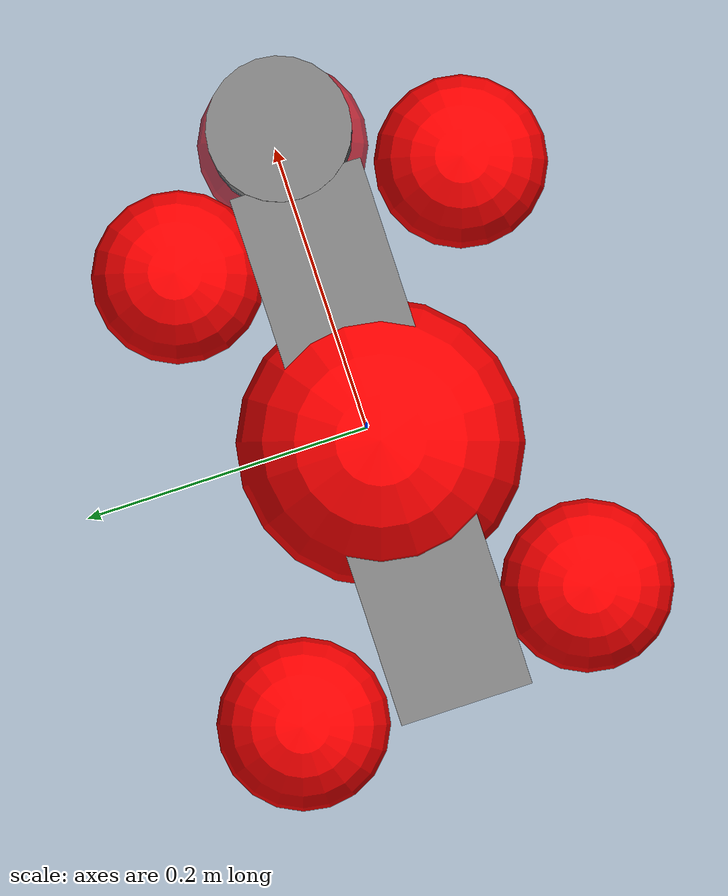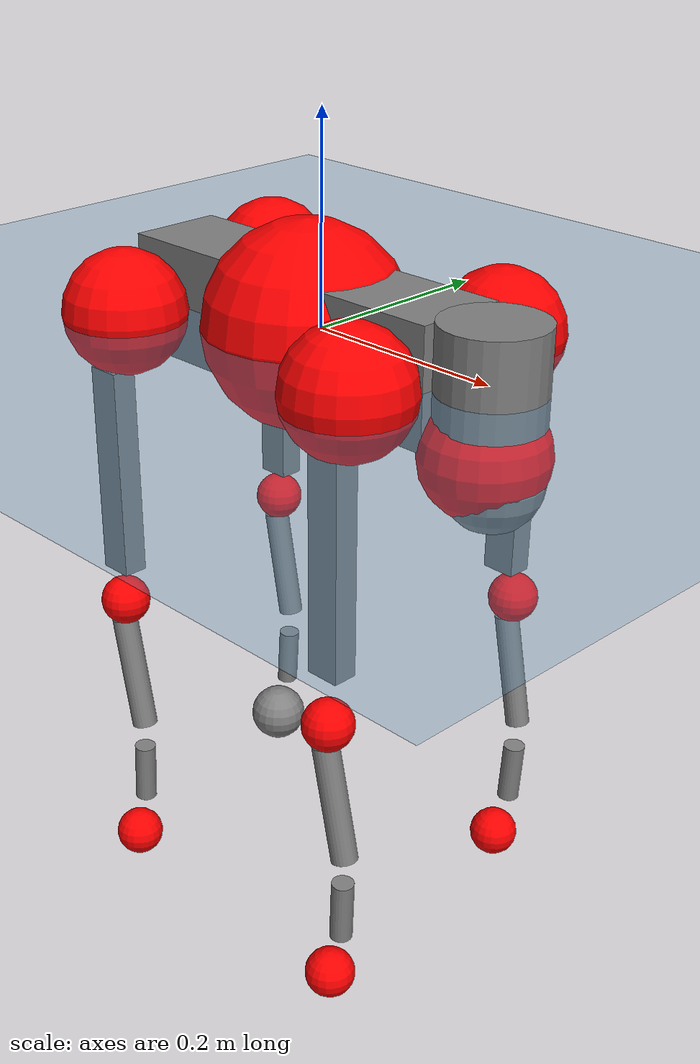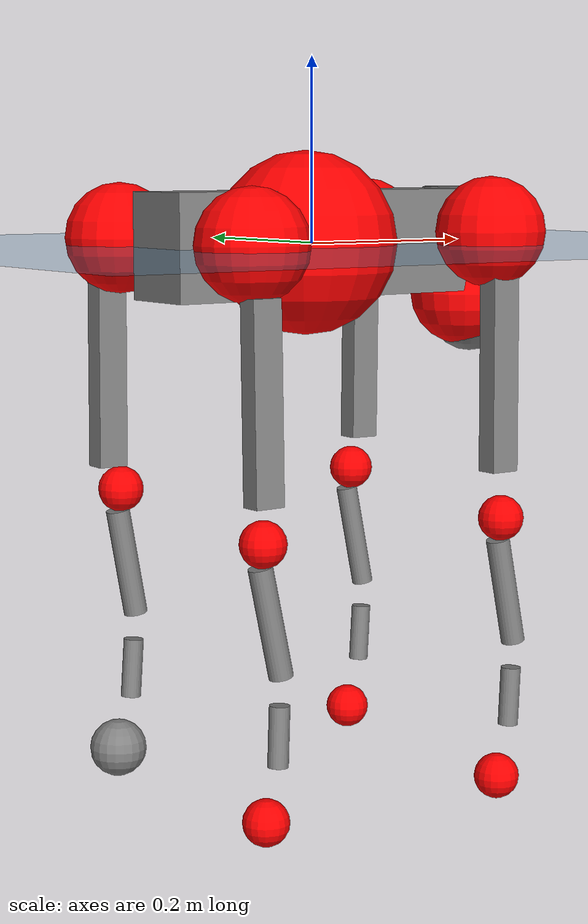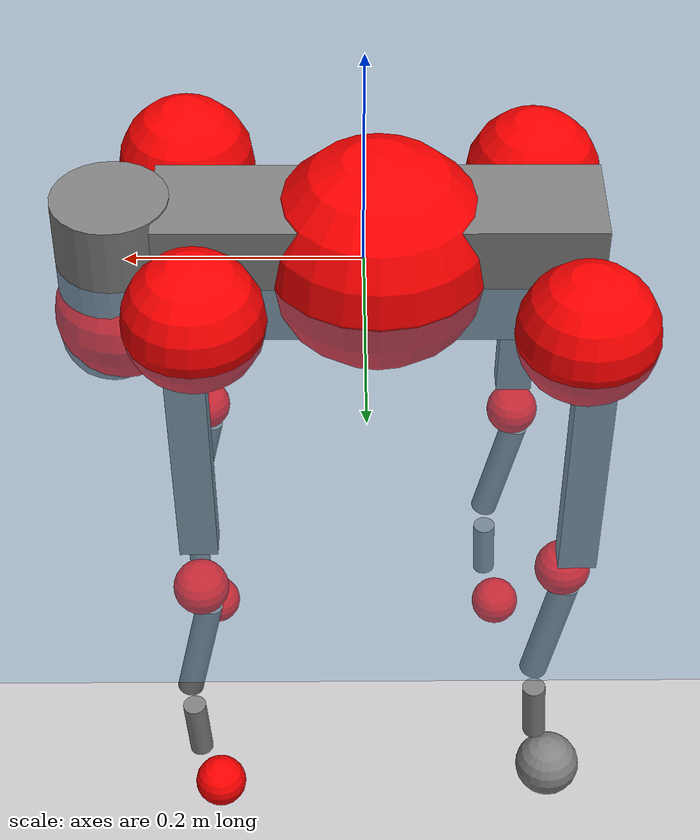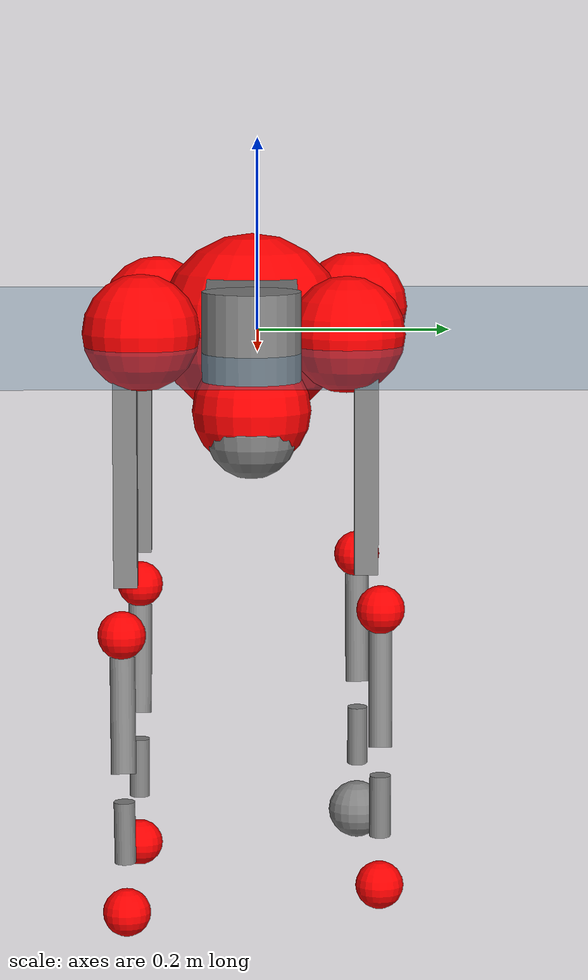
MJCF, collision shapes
<mujoco model="go2">
  <compiler angle="radian" assetdir="assets" balanceinertia="true" inertiafromgeom="false"/>

  <option timestep="0.005" density="1.2" viscosity="2e-05"/>

  <size nkey="1"/>

  <visual>
    <quality shadowsize="8192"/>
    <map shadowclip="0.5"/>
  </visual>

  <default>
    <default class="/">
      <geom contype="0" conaffinity="0" group="1" solref="-1000 -80"/>
      <site size="0.01 0.005 0.005" group="5"/>
      <general forcelimited="true" biastype="affine" gainprm="20" biasprm="0 -20 -0.5"/>
      <default class="go2">
        <joint armature="0.01" damping="0.01" frictionloss="0.2"/>
        <geom condim="1" margin="0.001"/>
        <default class="visual">
          <geom type="mesh" group="2"/>
        </default>
        <default class="collision">
          <geom group="3"/>
          <default class="foot">
            <geom size="0.022 0 0" condim="6" priority="1" friction="0.8 0.02 0.01" solimp="0.015 1 0.022"/>
          </default>
        </default>
        <default class="reward_collision_sphere">
          <geom group="5" rgba="1 0 0 1"/>
        </default>
      </default>
    </default>
  </default>

  <asset>
    <texture type="skybox" colorspace="auto" name="//unnamed_texture_0" builtin="gradient" rgb1="0.95 0.95 0.95" rgb2="0.95 0.95 0.95" width="100" height="600"/>
    <texture type="2d" colorspace="auto" name="texplane" builtin="checker" rgb1="0.345 0.575 0.748" rgb2="0.345 0.575 0.748" markrgb="1 1 1" width="512" height="512"/>
    <material name="MatPlane" class="/" texture="texplane" texuniform="true" texrepeat="2 2" specular="0.9"/>
    <material name="metal" class="/" rgba="0.9 0.95 0.95 1"/>
    <material name="black" class="/" rgba="0 0 0 1"/>
    <material name="white" class="/"/>
    <material name="gray" class="/" rgba="0.671705 0.692426 0.77427 1"/>
    <mesh name="base_0" class="/" file="base_0.obj"/>
    <mesh name="base_1" class="/" file="base_1.obj"/>
    <mesh name="base_2" class="/" file="base_2.obj"/>
    <mesh name="base_3" class="/" file="base_3.obj"/>
    <mesh name="base_4" class="/" file="base_4.obj"/>
    <mesh name="hip_0" class="/" file="hip_0.obj"/>
    <mesh name="hip_1" class="/" file="hip_1.obj"/>
    <mesh name="thigh_0" class="/" file="thigh_0.obj"/>
    <mesh name="thigh_1" class="/" file="thigh_1.obj"/>
    <mesh name="thigh_mirror_0" class="/" file="thigh_mirror_0.obj"/>
    <mesh name="thigh_mirror_1" class="/" file="thigh_mirror_1.obj"/>
    <mesh name="calf_0" class="/" file="calf_0.obj"/>
    <mesh name="calf_1" class="/" file="calf_1.obj"/>
    <mesh name="calf_mirror_0" class="/" file="calf_mirror_0.obj"/>
    <mesh name="calf_mirror_1" class="/" file="calf_mirror_1.obj"/>
    <mesh name="foot" class="/" file="foot.obj"/>
  </asset>

  <worldbody>
    <geom name="floor" class="/" size="100 100 0.125" type="plane" group="0" material="MatPlane"/>
    <light name="toplight_shadow" class="/" pos="0 0 5" dir="0.0990148 0.0990148 -0.990148" type="directional" ambient="0.04 0.04 0.04" diffuse="0.55 0.55 0.55" specular="0.12 0.12 0.12"/>
    <light name="toplight_fill" class="/" pos="0 0 5" dir="0.0990148 0.0990148 -0.990148" type="directional" castshadow="false" ambient="0.04 0.04 0.04" diffuse="0.3 0.3 0.3" specular="0.08 0.08 0.08"/>
    <body name="trunk" childclass="go2" pos="-0.0125747 -0.00584349 0.00096833" quat="0.999998 -0.000213226 -0.00185854 -0.000236867">
      <inertial pos="0.0173055 0.000974468 -0.00712063" quat="0.0253513 0.705232 0.0242974 0.708106" mass="6.73239" diaginertia="0.0219017 0.0303 0.109492"/>
      <joint name="//unnamed_joint_0" type="free" armature="0" damping="0" frictionloss="0"/>
      <geom name="//unnamed_geom_1" class="visual" material="black" mesh="base_0"/>
      <geom name="//unnamed_geom_2" class="visual" material="black" mesh="base_1"/>
      <geom name="//unnamed_geom_3" class="visual" material="black" mesh="base_2"/>
      <geom name="//unnamed_geom_4" class="visual" material="white" mesh="base_3"/>
      <geom name="//unnamed_geom_5" class="visual" material="gray" mesh="base_4"/>
      <geom name="trunk_1" class="collision" size="0.186296 0.0463016 0.0564533" type="box"/>
      <geom name="trunk_2" class="collision" size="0.0495205 0.0445684" pos="0.221568 0 0.0135892" type="cylinder"/>
      <geom name="trunk_3" class="collision" size="0.0465492" pos="0.227787 0 -0.081535"/>
      <geom name="//unnamed_geom_9" class="reward_collision_sphere" size="0.099041"/>
      <geom name="//unnamed_geom_10" class="reward_collision_sphere" size="0.0594246" pos="0.21768 0 -0.0611512"/>
      <site name="imu" pos="-0.0410649 0.0106739 0.127938" size="0.0099041"/>
      <camera name="track" pos="0 -1.66976 0" quat="0.707107 0.707107 0 0" mode="trackcom"/>
      <camera name="ego_camera" pos="0.242558 0 0.0611512" quat="-0.5 -0.5 0.5 0.5"/>
      <body name="FL_hip" pos="0.149719 0.0377173 0.00822022" quat="0.999983 -0.00127266 0.005356 -0.00196029">
        <inertial pos="0.00931273 0.00767418 -0.000826694" quat="0.494903 0.497268 0.505973 0.501783" mass="0.688337" diaginertia="0.000261958 0.000272654 0.00228222"/>
        <joint name="FL_hip_joint" pos="0 0 0" axis="0.997018 -0.00535719 -0.0769861" stiffness="0.0637997" range="-1.02597 1.04362" armature="0.016424" damping="0" frictionloss="0.127759"/>
        <geom name="//unnamed_geom_11" class="visual" material="metal" mesh="hip_0"/>
        <geom name="//unnamed_geom_12" class="visual" material="gray" mesh="hip_1"/>
        <geom name="//unnamed_geom_13" class="collision" size="0.0455588 0.0198082" pos="0 0.0667906 0" quat="0.707107 0.707107 0 0" type="cylinder"/>
        <geom name="//unnamed_geom_14" class="reward_collision_sphere" size="0.0594246" pos="0 0.0584417 0"/>
        <body name="FL_thigh" pos="0.00902465 0.0776503 0.00772754" quat="0.999995 0.00278677 0.00121796 -0.000997858">
          <inertial pos="-0.00206992 -0.0198447 -0.0298283" quat="0.82594 0.0527765 -0.02783 0.560592" mass="1.18419" diaginertia="0.00179988 0.00252422 0.0043349"/>
          <joint name="FL_thigh_joint" pos="0 0 0" axis="-0.0358407 0.999266 -0.013529" stiffness="0.043714" range="-1.69666 3.49462" armature="0.00366111" damping="0.0443171" frictionloss="0.278864"/>
          <geom name="//unnamed_geom_15" class="visual" material="metal" mesh="thigh_0"/>
          <geom name="//unnamed_geom_16" class="visual" material="gray" mesh="thigh_1"/>
          <geom name="//unnamed_geom_17" class="collision" size="0.105479 0.0121325 0.016837" pos="0 0 -0.144725" quat="0.707107 0 0.707107 0" type="box"/>
          <body name="FL_calf" pos="0.00017932 0.0149775 -0.28903" quat="0.999988 -0.00162998 0.000690877 -0.00461736">
            <inertial pos="-0.00207509 0.00311848 -0.193906" quat="0.698714 0.0573674 0.0299336 0.712468" mass="0.187163" diaginertia="0.000427817 0.000536754 0.000252262"/>
            <joint name="FL_calf_joint" pos="0 0 0" axis="0.0237906 0.99966 0.0106531" range="-2.71713 -0.788699" armature="0.00971167" damping="0.0532816" frictionloss="0.184061"/>
            <geom name="//unnamed_geom_18" class="visual" material="gray" mesh="calf_0"/>
            <geom name="//unnamed_geom_19" class="visual" material="black" mesh="calf_1"/>
            <geom name="FL_calf0" class="collision" size="0.0118849 0.0594246" pos="0.00621944 0 -0.081535" quat="0.994493 0 -0.104807 0" type="cylinder"/>
            <geom name="//unnamed_geom_21" class="collision" size="0.0108945 0.0321883" pos="0.0155486 0 -0.20112" quat="0.999688 0 0.0249974 0" type="cylinder"/>
            <geom name="//unnamed_geom_22" class="visual" pos="0 0 -0.289449" quat="1 0 0 0" material="black" mesh="foot"/>
            <geom name="FL_foot" class="foot" size="0.0137379" pos="-0.00155486 0 -0.289449"/>
            <geom name="//unnamed_geom_24" class="reward_collision_sphere" size="0.0247602"/>
            <geom name="//unnamed_geom_25" class="reward_collision_sphere" size="0.0247602" pos="-0.00155486 0 -0.289449"/>
            <site name="FL_foot" class="foot" pos="-0.00155486 0 -0.289449" size="0.0099041"/>
          </body>
        </body>
      </body>
      <body name="FR_hip" pos="0.165082 -0.0531001 0.0113248" quat="1 -0.00026043 0.000182948 -0.000102694">
        <inertial pos="-0.0185355 -0.00582127 0.012953" quat="0.514554 0.507827 0.462714 0.513072" mass="0.529639" diaginertia="0.000209542 0.00022302 0.00182424"/>
        <joint name="FR_hip_joint" pos="0 0 0" axis="0.998084 -0.0569402 0.0241993" range="-0.780686 1.00785" armature="0.0108619" damping="0.00197674" frictionloss="0.313201"/>
        <geom name="//unnamed_geom_26" class="visual" pos="0 -4.56517e-09 -1.9581e-07" quat="4.63268e-05 1 0 0" material="metal" mesh="hip_0"/>
        <geom name="//unnamed_geom_27" class="visual" pos="0 -7.40069e-09 4.84312e-07" quat="4.63268e-05 1 0 0" material="gray" mesh="hip_1"/>
        <geom name="//unnamed_geom_28" class="collision" size="0.0455588 0.0198082" pos="0 -0.0667906 0" quat="0.707107 0.707107 0 0" type="cylinder"/>
        <geom name="//unnamed_geom_29" class="reward_collision_sphere" size="0.0594246" pos="0 -0.0584417 0"/>
        <body name="FR_thigh" pos="-0.000692119 -0.0750124 -0.0083283" quat="1 0.000298478 -0.000262493 -9.27199e-05">
          <inertial pos="0.00450638 0.00311582 -0.0486311" quat="0.547626 -0.0178085 0.0848515 0.832219" mass="1.05326" diaginertia="0.00165747 0.00215003 0.00379796"/>
          <joint name="FR_thigh_joint" pos="0 0 0" axis="0.0488919 -0.99879 -0.00538862" range="-3.45264 1.42524" armature="0.0122742" damping="0.0550187" frictionloss="0.168246"/>
          <geom name="//unnamed_geom_30" class="visual" material="metal" mesh="thigh_mirror_0"/>
          <geom name="//unnamed_geom_31" class="visual" material="gray" mesh="thigh_mirror_1"/>
          <geom name="//unnamed_geom_32" class="collision" size="0.105479 0.0121325 0.016837" pos="0 0 -0.144725" quat="0.707107 0 0.707107 0" type="box"/>
          <body name="FR_calf" pos="0.000659376 -0.00453919 -0.301239" quat="0.999974 0.00652952 -0.00276591 0.00135289">
            <inertial pos="-0.0107299 0.00963588 -0.203789" quat="0.70961 0.00665949 0.00149801 0.704562" mass="0.276674" diaginertia="0.000395554 0.000519692 0.00020771"/>
            <joint name="FR_calf_joint" pos="0 0 0" axis="-0.0140102 -0.999717 -0.0192274" range="1.1101 2.73975" armature="0.00872544" damping="0" frictionloss="0.0758336"/>
            <geom name="//unnamed_geom_33" class="visual" material="gray" mesh="calf_mirror_0"/>
            <geom name="//unnamed_geom_34" class="visual" material="black" mesh="calf_mirror_1"/>
            <geom name="FR_calf0" class="collision" size="0.0128753 0.0594246" pos="0.0077743 0 -0.081535" quat="0.995004 0 -0.0998334 0" type="cylinder"/>
            <geom name="//unnamed_geom_36" class="collision" size="0.0108945 0.0321883" pos="0.0155486 0 -0.20112" quat="0.999688 0 0.0249974 0" type="cylinder"/>
            <geom name="//unnamed_geom_37" class="visual" pos="0 0 -0.289449" quat="1 0 0 0" material="black" mesh="foot"/>
            <geom name="FR_foot" class="foot" size="0.024171" pos="-0.00155486 0 -0.289449"/>
            <geom name="//unnamed_geom_39" class="reward_collision_sphere" size="0.0247602"/>
            <geom name="//unnamed_geom_40" class="reward_collision_sphere" size="0.0247602" pos="-0.00155486 0 -0.289449"/>
            <site name="FR_foot" class="foot" pos="-0.00155486 0 -0.289449" size="0.0099041"/>
          </body>
        </body>
      </body>
      <body name="RL_hip" pos="-0.166243 0.0510902 0.00622235" quat="0.999997 -0.000340667 0.0022239 -0.000495353">
        <inertial pos="-0.00952266 0.0169079 0.00121216" quat="0.463122 0.4852 0.536571 0.512046" mass="0.708358" diaginertia="0.000260926 0.000242099 0.00252585"/>
        <joint name="RL_hip_joint" pos="0 0 0" axis="-0.99947 -0.02262 -0.0234231" stiffness="0.00307136" range="-1.24074 0.932214" armature="0.00959247" damping="0.0172264" frictionloss="0.249976"/>
        <geom name="//unnamed_geom_41" class="visual" pos="5.06567e-09 0 9.92989e-07" quat="4.63268e-05 0 1 0" material="metal" mesh="hip_0"/>
        <geom name="//unnamed_geom_42" class="visual" pos="8.21206e-09 0 8.80639e-07" quat="4.63268e-05 0 1 0" material="gray" mesh="hip_1"/>
        <geom name="//unnamed_geom_43" class="collision" size="0.0455588 0.0198082" pos="0 0.0667906 0" quat="0.707107 0.707107 0 0" type="cylinder"/>
        <geom name="//unnamed_geom_44" class="reward_collision_sphere" size="0.0594246" pos="0 0.0584417 0"/>
        <body name="RL_thigh" pos="-0.00782369 0.0739599 0.00162257" quat="0.999996 0.00233036 0.00047495 0.00145895">
          <inertial pos="-0.00624809 -0.0326788 -0.0449836" quat="0.806545 0.0853717 -0.0575095 0.582142" mass="0.938103" diaginertia="0.00165228 0.00205324 0.00422851"/>
          <joint name="RL_thigh_joint" pos="0 0 0" axis="-0.0440908 0.997892 0.0476216" stiffness="0.050187" range="-0.716736 4.36081" armature="0.00362647" damping="0" frictionloss="0.0820569"/>
          <geom name="//unnamed_geom_45" class="visual" material="metal" mesh="thigh_0"/>
          <geom name="//unnamed_geom_46" class="visual" material="gray" mesh="thigh_1"/>
          <geom name="//unnamed_geom_47" class="collision" size="0.105479 0.0121325 0.016837" pos="0 0 -0.144725" quat="0.707107 0 0.707107 0" type="box"/>
          <body name="RL_calf" pos="0.00886619 -0.0113407 -0.274714" quat="0.999972 7.02011e-05 0.00740531 0.000942449">
            <inertial pos="0.00343479 -0.00068946 -0.207925" quat="0.693543 0.0258057 -0.0238321 0.719559" mass="0.275341" diaginertia="0.000427119 0.000649776 0.000248943"/>
            <joint name="RL_calf_joint" pos="0 0 0" axis="-0.028563 0.99958 -0.00497738" stiffness="0.0337959" range="-2.79875 -0.658638" armature="0.00812891" damping="0.0144401" frictionloss="0.30535"/>
            <geom name="//unnamed_geom_48" class="visual" material="gray" mesh="calf_0"/>
            <geom name="//unnamed_geom_49" class="visual" material="black" mesh="calf_1"/>
            <geom name="RL_calf0" class="collision" size="0.0128753 0.0594246" pos="0.0077743 0 -0.081535" quat="0.995004 0 -0.0998334 0" type="cylinder"/>
            <geom name="//unnamed_geom_51" class="collision" size="0.0108945 0.0321883" pos="0.0155486 0 -0.20112" quat="0.999688 0 0.0249974 0" type="cylinder"/>
            <geom name="//unnamed_geom_52" class="visual" pos="0 0 -0.289449" quat="1 0 0 0" material="black" mesh="foot"/>
            <geom name="RL_foot" class="foot" size="0.0311554" pos="-0.00155486 0 -0.289449"/>
            <geom name="//unnamed_geom_54" class="reward_collision_sphere" size="0.0247602"/>
            <geom name="//unnamed_geom_55" class="reward_collision_sphere" size="0.0247602" pos="-0.00155486 0 -0.289449"/>
            <site name="RL_foot" class="foot" pos="-0.00155486 0 -0.289449" size="0.0099041"/>
          </body>
        </body>
      </body>
      <body name="RR_hip" pos="-0.136579 -0.0451183 0.0039484" quat="0.999996 -0.0024303 -0.00102782 0.000196221">
        <inertial pos="-0.00590817 -0.00923403 0.000972886" quat="0.537672 0.442548 0.516611 0.49817" mass="0.687938" diaginertia="0.000233395 0.000221703 0.00205056"/>
        <joint name="RR_hip_joint" pos="0 0 0" axis="-0.997435 0.0229294 0.067805" stiffness="0.0124541" range="-1.03251 0.948554" armature="0.0130355" damping="0" frictionloss="0.199965"/>
        <geom name="//unnamed_geom_56" class="visual" pos="-5.06368e-09 -4.56517e-09 1.1888e-06" quat="2.14617e-09 4.63268e-05 4.63268e-05 -1" material="metal" mesh="hip_0"/>
        <geom name="//unnamed_geom_57" class="visual" pos="-8.21698e-09 -7.40069e-09 3.96327e-07" quat="2.14617e-09 4.63268e-05 4.63268e-05 -1" material="gray" mesh="hip_1"/>
        <geom name="//unnamed_geom_58" class="collision" size="0.0455588 0.0198082" pos="0 -0.0667906 0" quat="0.707107 0.707107 0 0" type="cylinder"/>
        <geom name="//unnamed_geom_59" class="reward_collision_sphere" size="0.0594246" pos="0 -0.0584417 0"/>
        <body name="RR_thigh" pos="-0.00208933 -0.075798 -0.0125541" quat="0.999996 -0.000168158 -0.00281469 7.11478e-06">
          <inertial pos="-0.00686908 0.0193239 -0.0490706" quat="0.515495 -0.0818016 0.0724351 0.849898" mass="1.18061" diaginertia="0.00170864 0.00204248 0.00332055"/>
          <joint name="RR_thigh_joint" pos="0 0 0" axis="0.0180529 -0.999802 -0.00839324" stiffness="0.0500144" range="-4.5302 0.41629" armature="0.00470829" damping="0.0651647" frictionloss="0.269775"/>
          <geom name="//unnamed_geom_60" class="visual" material="metal" mesh="thigh_mirror_0"/>
          <geom name="//unnamed_geom_61" class="visual" material="gray" mesh="thigh_mirror_1"/>
          <geom name="//unnamed_geom_62" class="collision" size="0.105479 0.0121325 0.016837" pos="0 0 -0.144725" quat="0.707107 0 0.707107 0" type="box"/>
          <body name="RR_calf" pos="-0.00205926 -0.000434591 -0.287781" quat="1 7.93565e-05 -0.00017544 0.000190365">
            <inertial pos="0.0172996 0.0150077 -0.205814" quat="0.703142 -0.00812591 0.00203412 0.711" mass="0.203693" diaginertia="0.00048113 0.000513373 0.000254095"/>
            <joint name="RR_calf_joint" pos="0 0 0" axis="0.0210962 -0.999679 -0.0140428" stiffness="0.0121133" range="0.94567 2.44934" armature="0.0103825" damping="0" frictionloss="0.0602722"/>
            <geom name="//unnamed_geom_63" class="visual" material="gray" mesh="calf_mirror_0"/>
            <geom name="//unnamed_geom_64" class="visual" material="black" mesh="calf_mirror_1"/>
            <geom name="RR_calf0" class="collision" size="0.0128753 0.0594246" pos="0.0077743 0 -0.081535" quat="0.995004 0 -0.0998334 0" type="cylinder"/>
            <geom name="//unnamed_geom_66" class="collision" size="0.0108945 0.0321883" pos="0.0155486 0 -0.20112" quat="0.999688 0 0.0249974 0" type="cylinder"/>
            <geom name="//unnamed_geom_67" class="visual" pos="0 0 -0.289449" quat="1 0 0 0" material="black" mesh="foot"/>
            <geom name="RR_foot" class="foot" size="0.010857" pos="-0.00155486 0 -0.289449"/>
            <geom name="//unnamed_geom_69" class="reward_collision_sphere" size="0.0247602"/>
            <geom name="//unnamed_geom_70" class="reward_collision_sphere" size="0.0247602" pos="-0.00155486 0 -0.289449"/>
            <site name="RR_foot" class="foot" pos="-0.00155486 0 -0.289449" size="0.0099041"/>
          </body>
        </body>
      </body>
    </body>
  </worldbody>

  <contact>
    <pair class="/" geom1="floor" geom2="FL_foot" name="//unnamed_contact_0"/>
    <pair class="/" geom1="floor" geom2="FR_foot" name="//unnamed_contact_1"/>
    <pair class="/" geom1="floor" geom2="RL_foot" name="//unnamed_contact_2"/>
    <pair class="/" geom1="floor" geom2="RR_foot" name="//unnamed_contact_3"/>
  </contact>

  <actuator>
    <general name="FL_hip" class="/" joint="FL_hip_joint" forcerange="-22.9846 22.9846" gainprm="20.5115" biasprm="0 -20.5115 -0.436476"/>
    <general name="FL_thigh" class="/" joint="FL_thigh_joint" forcerange="-33.754 33.754" gainprm="20.5115" biasprm="0 -20.5115 -0.436476"/>
    <general name="FL_calf" class="/" joint="FL_calf_joint" forcerange="-34.3763 34.3763" gainprm="20.5115" biasprm="0 -20.5115 -0.436476"/>
    <general name="FR_hip" class="/" joint="FR_hip_joint" forcerange="-23.9037 23.9037" gainprm="20.5115" biasprm="0 -20.5115 -0.436476"/>
    <general name="FR_thigh" class="/" joint="FR_thigh_joint" forcerange="-21.7995 21.7995" gainprm="20.5115" biasprm="0 -20.5115 -0.436476"/>
    <general name="FR_calf" class="/" joint="FR_calf_joint" forcerange="-30.7505 30.7505" gainprm="20.5115" biasprm="0 -20.5115 -0.436476"/>
    <general name="RL_hip" class="/" joint="RL_hip_joint" forcerange="-24.1824 24.1824" gainprm="20.5115" biasprm="0 -20.5115 -0.436476"/>
    <general name="RL_thigh" class="/" joint="RL_thigh_joint" forcerange="-15.7571 15.7571" gainprm="20.5115" biasprm="0 -20.5115 -0.436476"/>
    <general name="RL_calf" class="/" joint="RL_calf_joint" forcerange="-58.4747 58.4747" gainprm="20.5115" biasprm="0 -20.5115 -0.436476"/>
    <general name="RR_hip" class="/" joint="RR_hip_joint" forcerange="-24.1358 24.1358" gainprm="20.5115" biasprm="0 -20.5115 -0.436476"/>
    <general name="RR_thigh" class="/" joint="RR_thigh_joint" forcerange="-19.3061 19.3061" gainprm="20.5115" biasprm="0 -20.5115 -0.436476"/>
    <general name="RR_calf" class="/" joint="RR_calf_joint" forcerange="-70.204 70.204" gainprm="20.5115" biasprm="0 -20.5115 -0.436476"/>
  </actuator>

  <sensor>
    <gyro site="imu" name="imu_angular_velocity"/>
    <velocimeter site="imu" name="imu_linear_velocity"/>
    <framelinvel objtype="site" objname="FL_foot" name="FL_foot_global_linear_velocity"/>
    <framelinvel objtype="site" objname="FR_foot" name="FR_foot_global_linear_velocity"/>
    <framelinvel objtype="site" objname="RL_foot" name="RL_foot_global_linear_velocity"/>
    <framelinvel objtype="site" objname="RR_foot" name="RR_foot_global_linear_velocity"/>
  </sensor>

  <keyframe>
    <key name="home" qpos="0 0 0.325 1 0 0 0 0.1 0.8 -1.5 -0.1 -0.8 1.5 -0.1 0.8 -1.5 0.1 -0.8 1.5"/>
  </keyframe>
</mujoco>
